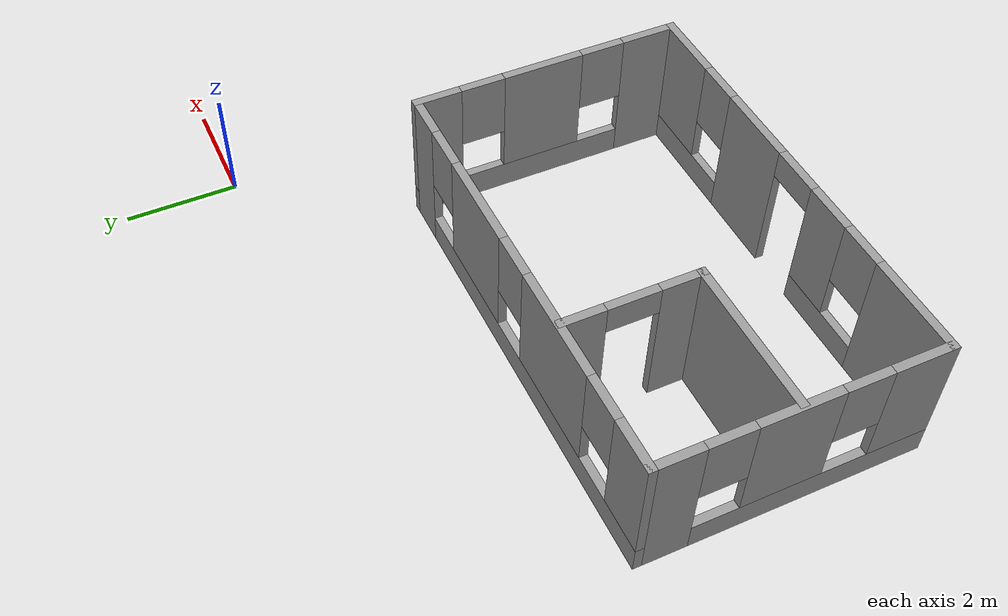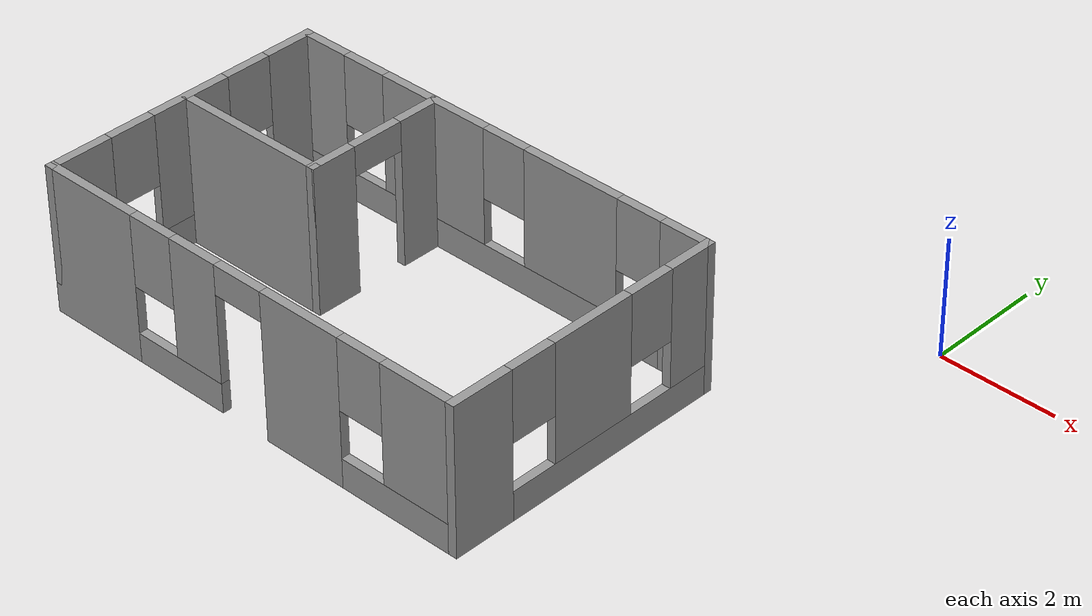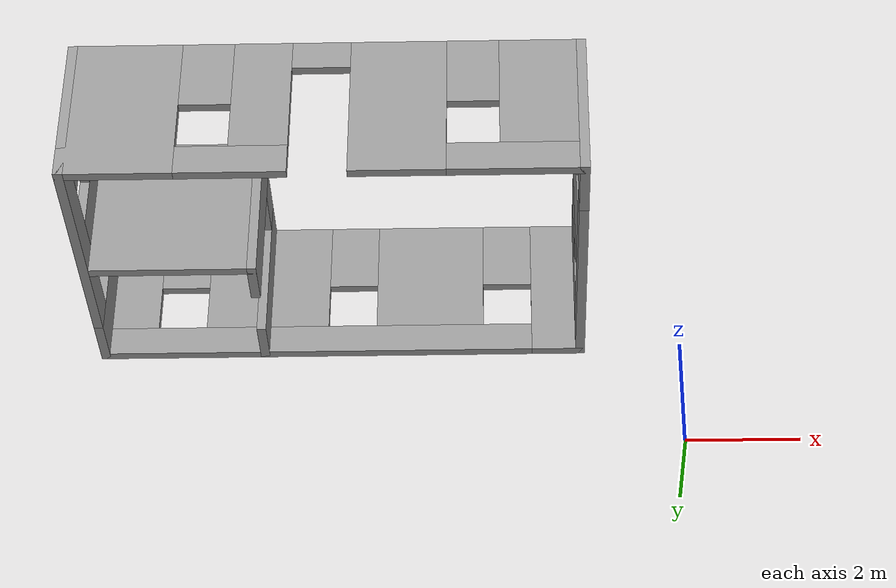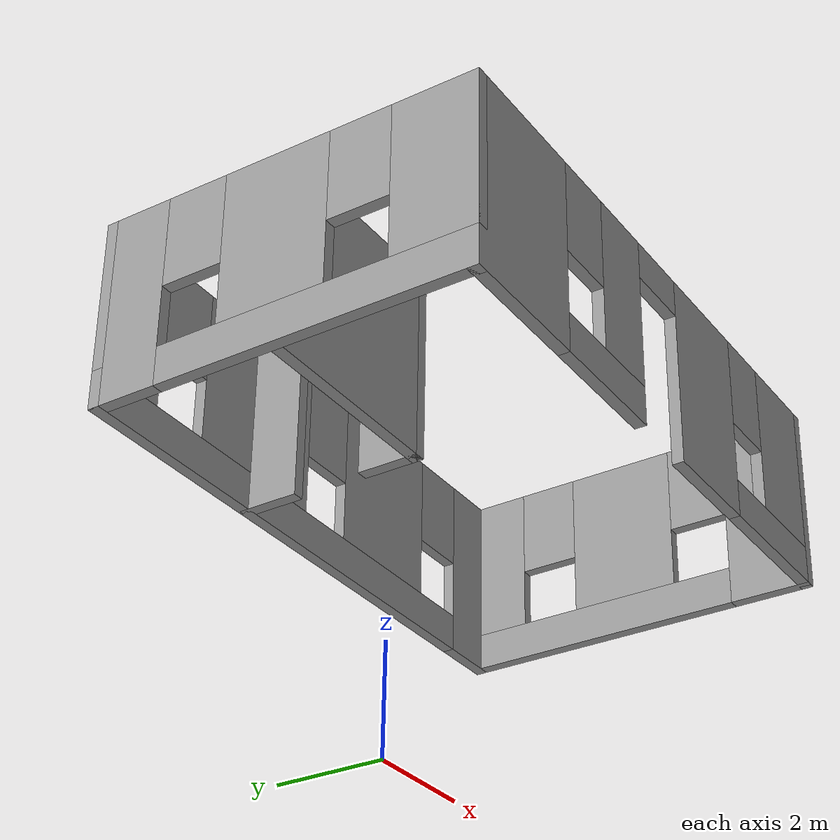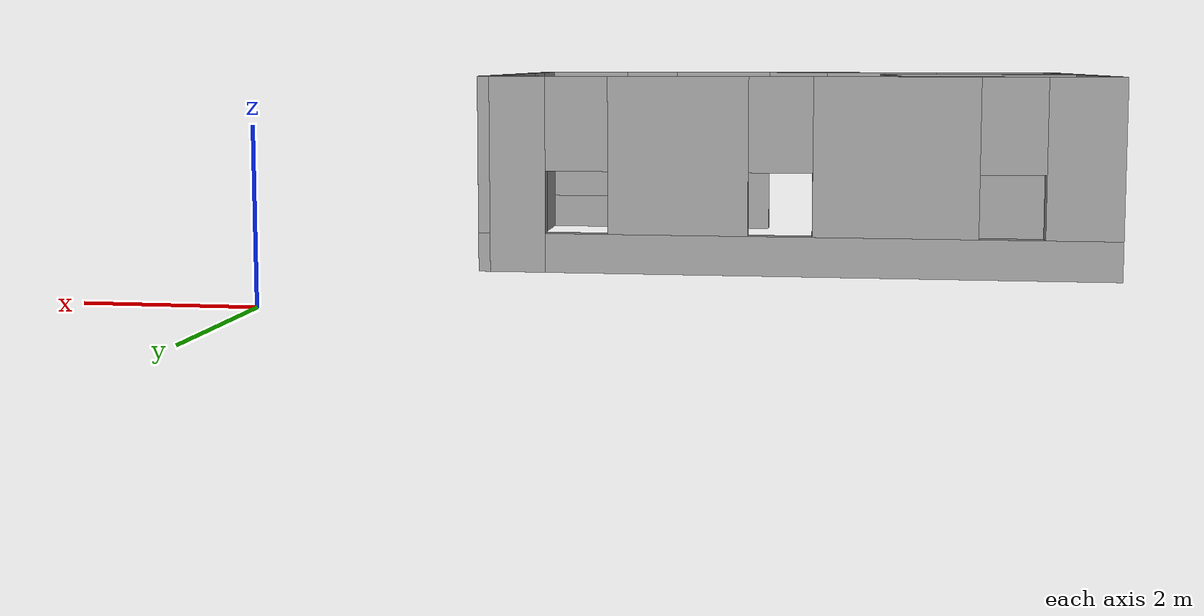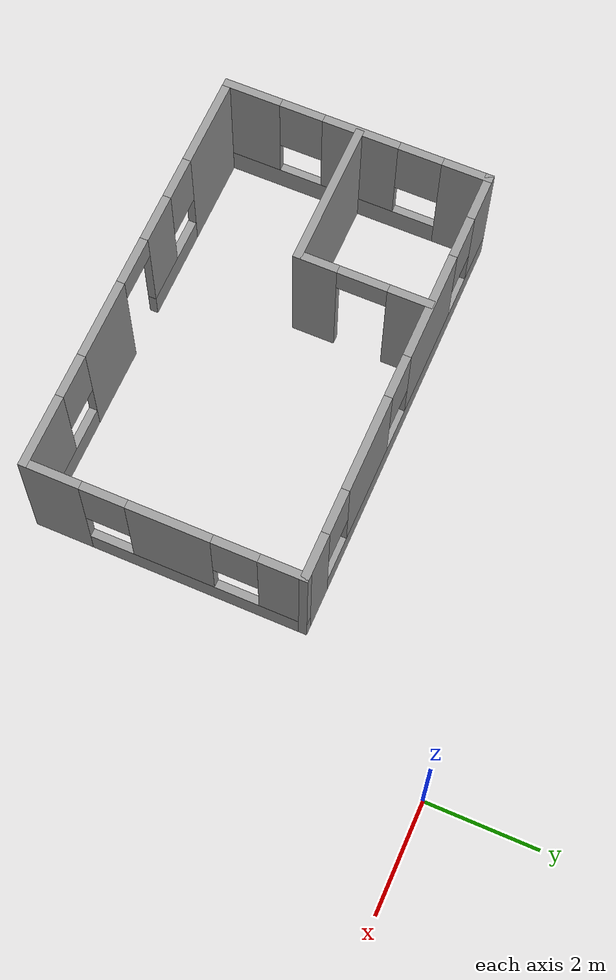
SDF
<?xml version='1.0'?>
<sdf version='1.6'>
  <model name='SimpleHouse'>
    <pose frame=''>-5.82104 -5.31275 0 0 -0 0</pose>
    <link name='Wall_10'>
      <pose frame=''>0 2.425 0 0 -0 3.14159</pose>
      <visual name='Wall_10_Visual_0'>
        <pose frame=''>-3.56603 0 1.25 0 -0 0</pose>
        <geometry>
          <box>
            <size>0.867938 0.15 2.5</size>
          </box>
        </geometry>
        <material>
          <script>
            <uri>file://media/materials/scripts/gazebo.material</uri>
            <name>Gazebo/Grey</name>
          </script>
          <ambient>1 1 1 1</ambient>
        </material>
        <meta>
          <layer>0</layer>
        </meta>
      </visual>
      <collision name='Wall_10_Collision_0'>
        <geometry>
          <box>
            <size>0.867938 0.15 2.5</size>
          </box>
        </geometry>
        <pose frame=''>-3.56603 0 1.25 0 -0 0</pose>
      </collision>
      <visual name='Wall_10_Visual_1'>
        <pose frame=''>0.433969 0 0.25 0 -0 0</pose>
        <geometry>
          <box>
            <size>7.13206 0.15 0.5</size>
          </box>
        </geometry>
        <material>
          <script>
            <uri>file://media/materials/scripts/gazebo.material</uri>
            <name>Gazebo/Grey</name>
          </script>
          <ambient>1 1 1 1</ambient>
        </material>
        <meta>
          <layer>0</layer>
        </meta>
      </visual>
      <collision name='Wall_10_Collision_1'>
        <geometry>
          <box>
            <size>7.13206 0.15 0.5</size>
          </box>
        </geometry>
        <pose frame=''>0.433969 0 0.25 0 -0 0</pose>
      </collision>
      <visual name='Wall_10_Visual_2'>
        <pose frame=''>-1.44654 0 1.5 0 -0 0</pose>
        <geometry>
          <box>
            <size>1.77104 0.15 2</size>
          </box>
        </geometry>
        <material>
          <script>
            <uri>file://media/materials/scripts/gazebo.material</uri>
            <name>Gazebo/Grey</name>
          </script>
          <ambient>1 1 1 1</ambient>
        </material>
        <meta>
          <layer>0</layer>
        </meta>
      </visual>
      <collision name='Wall_10_Collision_2'>
        <geometry>
          <box>
            <size>1.77104 0.15 2</size>
          </box>
        </geometry>
        <pose frame=''>-1.44654 0 1.5 0 -0 0</pose>
      </collision>
      <visual name='Wall_10_Visual_3'>
        <pose frame=''>1.25567 0 1.5 0 -0 0</pose>
        <geometry>
          <box>
            <size>2.03339 0.15 2</size>
          </box>
        </geometry>
        <material>
          <script>
            <uri>file://media/materials/scripts/gazebo.material</uri>
            <name>Gazebo/Grey</name>
          </script>
          <ambient>1 1 1 1</ambient>
        </material>
        <meta>
          <layer>0</layer>
        </meta>
      </visual>
      <collision name='Wall_10_Collision_3'>
        <geometry>
          <box>
            <size>2.03339 0.15 2</size>
          </box>
        </geometry>
        <pose frame=''>1.25567 0 1.5 0 -0 0</pose>
      </collision>
      <visual name='Wall_10_Visual_4'>
        <pose frame=''>3.53618 0 1.5 0 -0 0</pose>
        <geometry>
          <box>
            <size>0.927633 0.15 2</size>
          </box>
        </geometry>
        <material>
          <script>
            <uri>file://media/materials/scripts/gazebo.material</uri>
            <name>Gazebo/Grey</name>
          </script>
          <ambient>1 1 1 1</ambient>
        </material>
        <meta>
          <layer>0</layer>
        </meta>
      </visual>
      <collision name='Wall_10_Collision_4'>
        <geometry>
          <box>
            <size>0.927633 0.15 2</size>
          </box>
        </geometry>
        <pose frame=''>3.53618 0 1.5 0 -0 0</pose>
      </collision>
      <visual name='Wall_10_Visual_5'>
        <pose frame=''>-2.73206 0 1.9 0 -0 0</pose>
        <geometry>
          <box>
            <size>0.8 0.15 1.2</size>
          </box>
        </geometry>
        <material>
          <script>
            <uri>file://media/materials/scripts/gazebo.material</uri>
            <name>Gazebo/Grey</name>
          </script>
          <ambient>1 1 1 1</ambient>
        </material>
        <meta>
          <layer>0</layer>
        </meta>
      </visual>
      <collision name='Wall_10_Collision_5'>
        <geometry>
          <box>
            <size>0.8 0.15 1.2</size>
          </box>
        </geometry>
        <pose frame=''>-2.73206 0 1.9 0 -0 0</pose>
      </collision>
      <visual name='Wall_10_Visual_6'>
        <pose frame=''>-0.161023 0 1.9 0 -0 0</pose>
        <geometry>
          <box>
            <size>0.8 0.15 1.2</size>
          </box>
        </geometry>
        <material>
          <script>
            <uri>file://media/materials/scripts/gazebo.material</uri>
            <name>Gazebo/Grey</name>
          </script>
          <ambient>1 1 1 1</ambient>
        </material>
        <meta>
          <layer>0</layer>
        </meta>
      </visual>
      <collision name='Wall_10_Collision_6'>
        <geometry>
          <box>
            <size>0.8 0.15 1.2</size>
          </box>
        </geometry>
        <pose frame=''>-0.161023 0 1.9 0 -0 0</pose>
      </collision>
      <visual name='Wall_10_Visual_7'>
        <pose frame=''>2.67237 0 1.9 0 -0 0</pose>
        <geometry>
          <box>
            <size>0.8 0.15 1.2</size>
          </box>
        </geometry>
        <material>
          <script>
            <uri>file://media/materials/scripts/gazebo.material</uri>
            <name>Gazebo/Grey</name>
          </script>
          <ambient>1 1 1 1</ambient>
        </material>
        <meta>
          <layer>0</layer>
        </meta>
      </visual>
      <collision name='Wall_10_Collision_7'>
        <geometry>
          <box>
            <size>0.8 0.15 1.2</size>
          </box>
        </geometry>
        <pose frame=''>2.67237 0 1.9 0 -0 0</pose>
      </collision>
    </link>
    <link name='Wall_11'>
      <pose frame=''>-3.925 0 0 0 0 -1.5708</pose>
      <visual name='Wall_11_Visual_0'>
        <pose frame=''>-2.0445 0 1.25 0 -0 0</pose>
        <geometry>
          <box>
            <size>0.910996 0.15 2.5</size>
          </box>
        </geometry>
        <material>
          <script>
            <uri>file://media/materials/scripts/gazebo.material</uri>
            <name>Gazebo/Grey</name>
          </script>
          <ambient>1 1 1 1</ambient>
        </material>
        <meta>
          <layer>0</layer>
        </meta>
      </visual>
      <collision name='Wall_11_Collision_0'>
        <geometry>
          <box>
            <size>0.910996 0.15 2.5</size>
          </box>
        </geometry>
        <pose frame=''>-2.0445 0 1.25 0 -0 0</pose>
      </collision>
      <visual name='Wall_11_Visual_1'>
        <pose frame=''>0.455498 0 0.25 0 -0 0</pose>
        <geometry>
          <box>
            <size>4.089 0.15 0.5</size>
          </box>
        </geometry>
        <material>
          <script>
            <uri>file://media/materials/scripts/gazebo.material</uri>
            <name>Gazebo/Grey</name>
          </script>
          <ambient>1 1 1 1</ambient>
        </material>
        <meta>
          <layer>0</layer>
        </meta>
      </visual>
      <collision name='Wall_11_Collision_1'>
        <geometry>
          <box>
            <size>4.089 0.15 0.5</size>
          </box>
        </geometry>
        <pose frame=''>0.455498 0 0.25 0 -0 0</pose>
      </collision>
      <visual name='Wall_11_Visual_2'>
        <pose frame=''>-0.087131 0 1.5 0 -0 0</pose>
        <geometry>
          <box>
            <size>1.40375 0.15 2</size>
          </box>
        </geometry>
        <material>
          <script>
            <uri>file://media/materials/scripts/gazebo.material</uri>
            <name>Gazebo/Grey</name>
          </script>
          <ambient>1 1 1 1</ambient>
        </material>
        <meta>
          <layer>0</layer>
        </meta>
      </visual>
      <collision name='Wall_11_Collision_2'>
        <geometry>
          <box>
            <size>1.40375 0.15 2</size>
          </box>
        </geometry>
        <pose frame=''>-0.087131 0 1.5 0 -0 0</pose>
      </collision>
      <visual name='Wall_11_Visual_3'>
        <pose frame=''>1.95737 0 1.5 0 -0 0</pose>
        <geometry>
          <box>
            <size>1.08526 0.15 2</size>
          </box>
        </geometry>
        <material>
          <script>
            <uri>file://media/materials/scripts/gazebo.material</uri>
            <name>Gazebo/Grey</name>
          </script>
          <ambient>1 1 1 1</ambient>
        </material>
        <meta>
          <layer>0</layer>
        </meta>
      </visual>
      <collision name='Wall_11_Collision_3'>
        <geometry>
          <box>
            <size>1.08526 0.15 2</size>
          </box>
        </geometry>
        <pose frame=''>1.95737 0 1.5 0 -0 0</pose>
      </collision>
      <visual name='Wall_11_Visual_4'>
        <pose frame=''>-1.189 0 1.9 0 -0 0</pose>
        <geometry>
          <box>
            <size>0.8 0.15 1.2</size>
          </box>
        </geometry>
        <material>
          <script>
            <uri>file://media/materials/scripts/gazebo.material</uri>
            <name>Gazebo/Grey</name>
          </script>
          <ambient>1 1 1 1</ambient>
        </material>
        <meta>
          <layer>0</layer>
        </meta>
      </visual>
      <collision name='Wall_11_Collision_4'>
        <geometry>
          <box>
            <size>0.8 0.15 1.2</size>
          </box>
        </geometry>
        <pose frame=''>-1.189 0 1.9 0 -0 0</pose>
      </collision>
      <visual name='Wall_11_Visual_5'>
        <pose frame=''>1.01474 0 1.9 0 -0 0</pose>
        <geometry>
          <box>
            <size>0.8 0.15 1.2</size>
          </box>
        </geometry>
        <material>
          <script>
            <uri>file://media/materials/scripts/gazebo.material</uri>
            <name>Gazebo/Grey</name>
          </script>
          <ambient>1 1 1 1</ambient>
        </material>
        <meta>
          <layer>0</layer>
        </meta>
      </visual>
      <collision name='Wall_11_Collision_5'>
        <geometry>
          <box>
            <size>0.8 0.15 1.2</size>
          </box>
        </geometry>
        <pose frame=''>1.01474 0 1.9 0 -0 0</pose>
      </collision>
    </link>
    <link name='Wall_13'>
      <collision name='Wall_13_Collision'>
        <geometry>
          <box>
            <size>2.75 0.15 2.5</size>
          </box>
        </geometry>
        <pose frame=''>0 0 1.25 0 -0 0</pose>
      </collision>
      <visual name='Wall_13_Visual'>
        <pose frame=''>0 0 1.25 0 -0 0</pose>
        <geometry>
          <box>
            <size>2.75 0.15 2.5</size>
          </box>
        </geometry>
        <material>
          <script>
            <uri>file://media/materials/scripts/gazebo.material</uri>
            <name>Gazebo/Grey</name>
          </script>
          <ambient>1 1 1 1</ambient>
        </material>
        <meta>
          <layer>0</layer>
        </meta>
      </visual>
      <pose frame=''>-2.57918 0.052151 0 0 -0 0</pose>
    </link>
    <link name='Wall_14'>
      <pose frame=''>-1.27918 1.22715 0 0 -0 1.5708</pose>
      <visual name='Wall_14_Visual_0'>
        <pose frame=''>-0.851583 0 1.25 0 -0 0</pose>
        <geometry>
          <box>
            <size>0.796834 0.15 2.5</size>
          </box>
        </geometry>
        <material>
          <script>
            <uri>file://media/materials/scripts/gazebo.material</uri>
            <name>Gazebo/Grey</name>
          </script>
          <ambient>1 1 1 1</ambient>
        </material>
        <meta>
          <layer>0</layer>
        </meta>
      </visual>
      <collision name='Wall_14_Collision_0'>
        <geometry>
          <box>
            <size>0.796834 0.15 2.5</size>
          </box>
        </geometry>
        <pose frame=''>-0.851583 0 1.25 0 -0 0</pose>
      </collision>
      <visual name='Wall_14_Visual_1'>
        <pose frame=''>0.848417 0 1.25 0 -0 0</pose>
        <geometry>
          <box>
            <size>0.803166 0.15 2.5</size>
          </box>
        </geometry>
        <material>
          <script>
            <uri>file://media/materials/scripts/gazebo.material</uri>
            <name>Gazebo/Grey</name>
          </script>
          <ambient>1 1 1 1</ambient>
        </material>
        <meta>
          <layer>0</layer>
        </meta>
      </visual>
      <collision name='Wall_14_Collision_1'>
        <geometry>
          <box>
            <size>0.803166 0.15 2.5</size>
          </box>
        </geometry>
        <pose frame=''>0.848417 0 1.25 0 -0 0</pose>
      </collision>
      <visual name='Wall_14_Visual_2'>
        <pose frame=''>-0.003166 0 2.25 0 -0 0</pose>
        <geometry>
          <box>
            <size>0.9 0.15 0.5</size>
          </box>
        </geometry>
        <material>
          <script>
            <uri>file://media/materials/scripts/gazebo.material</uri>
            <name>Gazebo/Grey</name>
          </script>
          <ambient>1 1 1 1</ambient>
        </material>
        <meta>
          <layer>0</layer>
        </meta>
      </visual>
      <collision name='Wall_14_Collision_2'>
        <geometry>
          <box>
            <size>0.9 0.15 0.5</size>
          </box>
        </geometry>
        <pose frame=''>-0.003166 0 2.25 0 -0 0</pose>
      </collision>
    </link>
    <link name='Wall_8'>
      <pose frame=''>0 -2.425 0 0 -0 0</pose>
      <visual name='Wall_8_Visual_0'>
        <pose frame=''>-3.10768 0 1.25 0 -0 0</pose>
        <geometry>
          <box>
            <size>1.78465 0.15 2.5</size>
          </box>
        </geometry>
        <material>
          <script>
            <uri>file://media/materials/scripts/gazebo.material</uri>
            <name>Gazebo/Grey</name>
          </script>
          <ambient>1 1 1 1</ambient>
        </material>
        <meta>
          <layer>0</layer>
        </meta>
      </visual>
      <collision name='Wall_8_Collision_0'>
        <geometry>
          <box>
            <size>1.78465 0.15 2.5</size>
          </box>
        </geometry>
        <pose frame=''>-3.10768 0 1.25 0 -0 0</pose>
      </collision>
      <visual name='Wall_8_Visual_1'>
        <pose frame=''>1.12174 0 1.25 0 -0 0</pose>
        <geometry>
          <box>
            <size>1.47618 0.15 2.5</size>
          </box>
        </geometry>
        <material>
          <script>
            <uri>file://media/materials/scripts/gazebo.material</uri>
            <name>Gazebo/Grey</name>
          </script>
          <ambient>1 1 1 1</ambient>
        </material>
        <meta>
          <layer>0</layer>
        </meta>
      </visual>
      <collision name='Wall_8_Collision_1'>
        <geometry>
          <box>
            <size>1.47618 0.15 2.5</size>
          </box>
        </geometry>
        <pose frame=''>1.12174 0 1.25 0 -0 0</pose>
      </collision>
      <visual name='Wall_8_Visual_2'>
        <pose frame=''>-1.36585 0 0.25 0 -0 0</pose>
        <geometry>
          <box>
            <size>1.69901 0.15 0.5</size>
          </box>
        </geometry>
        <material>
          <script>
            <uri>file://media/materials/scripts/gazebo.material</uri>
            <name>Gazebo/Grey</name>
          </script>
          <ambient>1 1 1 1</ambient>
        </material>
        <meta>
          <layer>0</layer>
        </meta>
      </visual>
      <collision name='Wall_8_Collision_2'>
        <geometry>
          <box>
            <size>1.69901 0.15 0.5</size>
          </box>
        </geometry>
        <pose frame=''>-1.36585 0 0.25 0 -0 0</pose>
      </collision>
      <visual name='Wall_8_Visual_3'>
        <pose frame=''>2.92991 0 0.25 0 -0 0</pose>
        <geometry>
          <box>
            <size>2.14017 0.15 0.5</size>
          </box>
        </geometry>
        <material>
          <script>
            <uri>file://media/materials/scripts/gazebo.material</uri>
            <name>Gazebo/Grey</name>
          </script>
          <ambient>1 1 1 1</ambient>
        </material>
        <meta>
          <layer>0</layer>
        </meta>
      </visual>
      <collision name='Wall_8_Collision_3'>
        <geometry>
          <box>
            <size>2.14017 0.15 0.5</size>
          </box>
        </geometry>
        <pose frame=''>2.92991 0 0.25 0 -0 0</pose>
      </collision>
      <visual name='Wall_8_Visual_4'>
        <pose frame=''>-0.965851 0 1.5 0 -0 0</pose>
        <geometry>
          <box>
            <size>0.899006 0.15 2</size>
          </box>
        </geometry>
        <material>
          <script>
            <uri>file://media/materials/scripts/gazebo.material</uri>
            <name>Gazebo/Grey</name>
          </script>
          <ambient>1 1 1 1</ambient>
        </material>
        <meta>
          <layer>0</layer>
        </meta>
      </visual>
      <collision name='Wall_8_Collision_4'>
        <geometry>
          <box>
            <size>0.899006 0.15 2</size>
          </box>
        </geometry>
        <pose frame=''>-0.965851 0 1.5 0 -0 0</pose>
      </collision>
      <visual name='Wall_8_Visual_5'>
        <pose frame=''>-0.965851 0 1.5 0 -0 0</pose>
        <geometry>
          <box>
            <size>0.899006 0.15 2</size>
          </box>
        </geometry>
        <material>
          <script>
            <uri>file://media/materials/scripts/gazebo.material</uri>
            <name>Gazebo/Grey</name>
          </script>
          <ambient>1 1 1 1</ambient>
        </material>
        <meta>
          <layer>0</layer>
        </meta>
      </visual>
      <collision name='Wall_8_Collision_5'>
        <geometry>
          <box>
            <size>0.899006 0.15 2</size>
          </box>
        </geometry>
        <pose frame=''>-0.965851 0 1.5 0 -0 0</pose>
      </collision>
      <visual name='Wall_8_Visual_6'>
        <pose frame=''>3.32992 0 1.5 0 -0 0</pose>
        <geometry>
          <box>
            <size>1.34017 0.15 2</size>
          </box>
        </geometry>
        <material>
          <script>
            <uri>file://media/materials/scripts/gazebo.material</uri>
            <name>Gazebo/Grey</name>
          </script>
          <ambient>1 1 1 1</ambient>
        </material>
        <meta>
          <layer>0</layer>
        </meta>
      </visual>
      <collision name='Wall_8_Collision_6'>
        <geometry>
          <box>
            <size>1.34017 0.15 2</size>
          </box>
        </geometry>
        <pose frame=''>3.32992 0 1.5 0 -0 0</pose>
      </collision>
      <visual name='Wall_8_Visual_7'>
        <pose frame=''>-1.81535 0 1.9 0 -0 0</pose>
        <geometry>
          <box>
            <size>0.8 0.15 1.2</size>
          </box>
        </geometry>
        <material>
          <script>
            <uri>file://media/materials/scripts/gazebo.material</uri>
            <name>Gazebo/Grey</name>
          </script>
          <ambient>1 1 1 1</ambient>
        </material>
        <meta>
          <layer>0</layer>
        </meta>
      </visual>
      <collision name='Wall_8_Collision_7'>
        <geometry>
          <box>
            <size>0.8 0.15 1.2</size>
          </box>
        </geometry>
        <pose frame=''>-1.81535 0 1.9 0 -0 0</pose>
      </collision>
      <visual name='Wall_8_Visual_8'>
        <pose frame=''>2.25983 0 1.9 0 -0 0</pose>
        <geometry>
          <box>
            <size>0.8 0.15 1.2</size>
          </box>
        </geometry>
        <material>
          <script>
            <uri>file://media/materials/scripts/gazebo.material</uri>
            <name>Gazebo/Grey</name>
          </script>
          <ambient>1 1 1 1</ambient>
        </material>
        <meta>
          <layer>0</layer>
        </meta>
      </visual>
      <collision name='Wall_8_Collision_8'>
        <geometry>
          <box>
            <size>0.8 0.15 1.2</size>
          </box>
        </geometry>
        <pose frame=''>2.25983 0 1.9 0 -0 0</pose>
      </collision>
      <visual name='Wall_8_Visual_9'>
        <pose frame=''>-0.066348 0 2.25 0 -0 0</pose>
        <geometry>
          <box>
            <size>0.9 0.15 0.5</size>
          </box>
        </geometry>
        <material>
          <script>
            <uri>file://media/materials/scripts/gazebo.material</uri>
            <name>Gazebo/Grey</name>
          </script>
          <ambient>1 1 1 1</ambient>
        </material>
        <meta>
          <layer>0</layer>
        </meta>
      </visual>
      <collision name='Wall_8_Collision_9'>
        <geometry>
          <box>
            <size>0.9 0.15 0.5</size>
          </box>
        </geometry>
        <pose frame=''>-0.066348 0 2.25 0 -0 0</pose>
      </collision>
      <visual name='Wall_8_Visual_10'>
        <pose frame=''>-0.066348 0 2.25 0 -0 0</pose>
        <geometry>
          <box>
            <size>0.9 0.15 0.5</size>
          </box>
        </geometry>
        <material>
          <script>
            <uri>file://media/materials/scripts/gazebo.material</uri>
            <name>Gazebo/Grey</name>
          </script>
          <ambient>1 1 1 1</ambient>
        </material>
        <meta>
          <layer>0</layer>
        </meta>
      </visual>
      <collision name='Wall_8_Collision_10'>
        <geometry>
          <box>
            <size>0.9 0.15 0.5</size>
          </box>
        </geometry>
        <pose frame=''>-0.066348 0 2.25 0 -0 0</pose>
      </collision>
    </link>
    <link name='Wall_9'>
      <pose frame=''>3.925 0 0 0 -0 1.5708</pose>
      <visual name='Wall_9_Visual_0'>
        <pose frame=''>-1.96612 0 1.25 0 -0 0</pose>
        <geometry>
          <box>
            <size>1.06777 0.15 2.5</size>
          </box>
        </geometry>
        <material>
          <script>
            <uri>file://media/materials/scripts/gazebo.material</uri>
            <name>Gazebo/Grey</name>
          </script>
          <ambient>1 1 1 1</ambient>
        </material>
        <meta>
          <layer>0</layer>
        </meta>
      </visual>
      <collision name='Wall_9_Collision_0'>
        <geometry>
          <box>
            <size>1.06777 0.15 2.5</size>
          </box>
        </geometry>
        <pose frame=''>-1.96612 0 1.25 0 -0 0</pose>
      </collision>
      <visual name='Wall_9_Visual_1'>
        <pose frame=''>0.533883 0 0.25 0 -0 0</pose>
        <geometry>
          <box>
            <size>3.93223 0.15 0.5</size>
          </box>
        </geometry>
        <material>
          <script>
            <uri>file://media/materials/scripts/gazebo.material</uri>
            <name>Gazebo/Grey</name>
          </script>
          <ambient>1 1 1 1</ambient>
        </material>
        <meta>
          <layer>0</layer>
        </meta>
      </visual>
      <collision name='Wall_9_Collision_1'>
        <geometry>
          <box>
            <size>3.93223 0.15 0.5</size>
          </box>
        </geometry>
        <pose frame=''>0.533883 0 0.25 0 -0 0</pose>
      </collision>
      <visual name='Wall_9_Visual_2'>
        <pose frame=''>0.104621 0 1.5 0 -0 0</pose>
        <geometry>
          <box>
            <size>1.47371 0.15 2</size>
          </box>
        </geometry>
        <material>
          <script>
            <uri>file://media/materials/scripts/gazebo.material</uri>
            <name>Gazebo/Grey</name>
          </script>
          <ambient>1 1 1 1</ambient>
        </material>
        <meta>
          <layer>0</layer>
        </meta>
      </visual>
      <collision name='Wall_9_Collision_2'>
        <geometry>
          <box>
            <size>1.47371 0.15 2</size>
          </box>
        </geometry>
        <pose frame=''>0.104621 0 1.5 0 -0 0</pose>
      </collision>
      <visual name='Wall_9_Visual_3'>
        <pose frame=''>2.07074 0 1.5 0 -0 0</pose>
        <geometry>
          <box>
            <size>0.858525 0.15 2</size>
          </box>
        </geometry>
        <material>
          <script>
            <uri>file://media/materials/scripts/gazebo.material</uri>
            <name>Gazebo/Grey</name>
          </script>
          <ambient>1 1 1 1</ambient>
        </material>
        <meta>
          <layer>0</layer>
        </meta>
      </visual>
      <collision name='Wall_9_Collision_3'>
        <geometry>
          <box>
            <size>0.858525 0.15 2</size>
          </box>
        </geometry>
        <pose frame=''>2.07074 0 1.5 0 -0 0</pose>
      </collision>
      <visual name='Wall_9_Visual_4'>
        <pose frame=''>-1.03223 0 1.9 0 -0 0</pose>
        <geometry>
          <box>
            <size>0.8 0.15 1.2</size>
          </box>
        </geometry>
        <material>
          <script>
            <uri>file://media/materials/scripts/gazebo.material</uri>
            <name>Gazebo/Grey</name>
          </script>
          <ambient>1 1 1 1</ambient>
        </material>
        <meta>
          <layer>0</layer>
        </meta>
      </visual>
      <collision name='Wall_9_Collision_4'>
        <geometry>
          <box>
            <size>0.8 0.15 1.2</size>
          </box>
        </geometry>
        <pose frame=''>-1.03223 0 1.9 0 -0 0</pose>
      </collision>
      <visual name='Wall_9_Visual_5'>
        <pose frame=''>1.24148 0 1.9 0 -0 0</pose>
        <geometry>
          <box>
            <size>0.8 0.15 1.2</size>
          </box>
        </geometry>
        <material>
          <script>
            <uri>file://media/materials/scripts/gazebo.material</uri>
            <name>Gazebo/Grey</name>
          </script>
          <ambient>1 1 1 1</ambient>
        </material>
        <meta>
          <layer>0</layer>
        </meta>
      </visual>
      <collision name='Wall_9_Collision_5'>
        <geometry>
          <box>
            <size>0.8 0.15 1.2</size>
          </box>
        </geometry>
        <pose frame=''>1.24148 0 1.9 0 -0 0</pose>
      </collision>
    </link>
    <static>1</static>
  </model>
</sdf>
